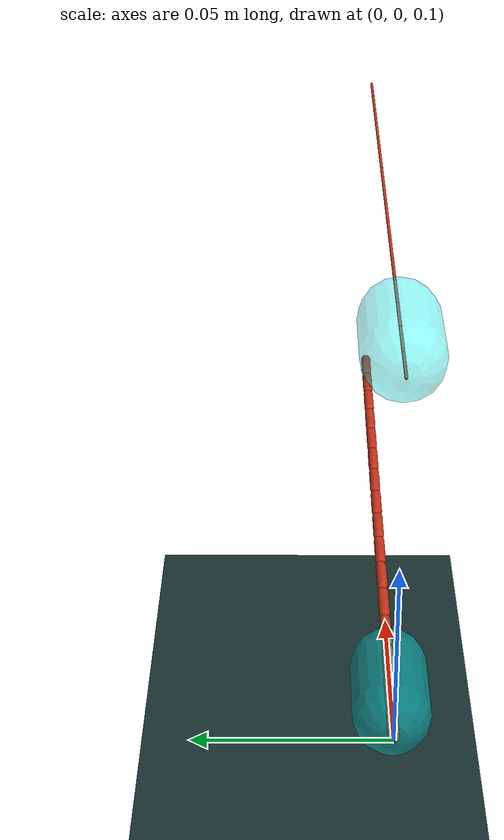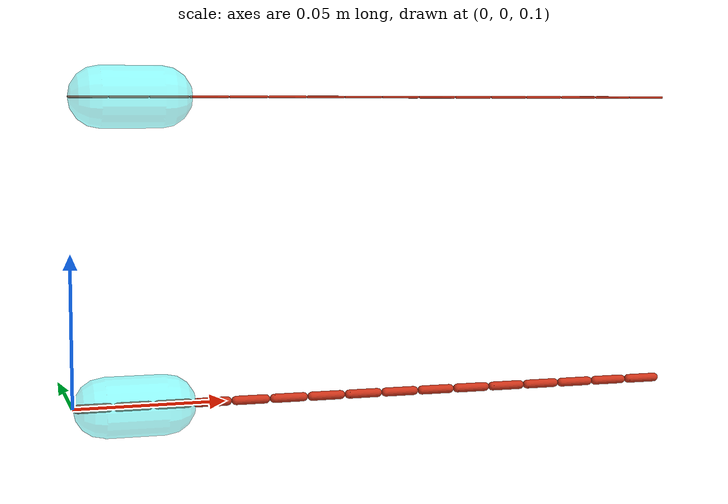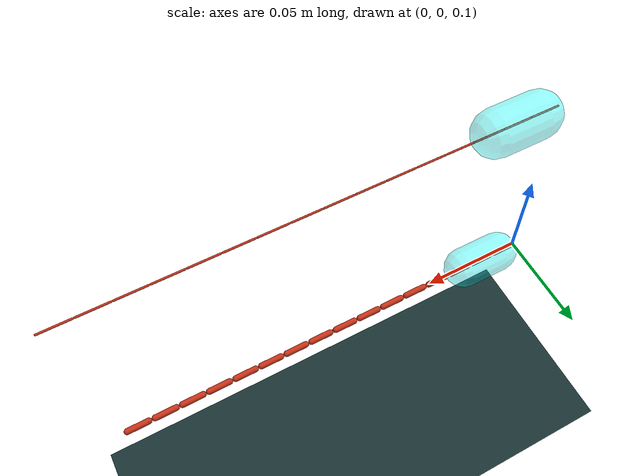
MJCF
<mujoco model="WhiskerSegmented">
<option timestep = "0.0002"></option>
  <include file="Backdrop.xml"/>

  <option gravity="0 0 0"/>

  <extension>
    <plugin plugin="mujoco.elasticity.cable"/>
  </extension>

  <statistic center="0 0 0.2" extent="1"/>

  <compiler autolimits="true"/>

  <visual>
    <global elevation="0"/>
  </visual>

  <default>
    <geom solref="0.01 1" solimp=".95 .99 .0001"/>
  </default>

  <worldbody>

<body name = "WhiskerBody_Nylon" pos = " 0.0065 -0.0 0.1" >

    <body name ="Seg0" pos = " 0 0 0">
   <geom name="Seg0_geom" type="capsule" size="0.0015 0.005" rgba="0.8 0.2 0.1 1" mass="1e-4" pos=" 0.0 0 0" euler="0 270 0" />
    <site name="segmented_whis_base_site_nylon" type="capsule" size="0.01 0.01" rgba="0 1 1 0.4" euler = "0 90 0" pos = "0.0135 0.0 0"/>
   <joint name="hinge0" type="hinge" axis="0 0 1" pos="-0.005 0 0" range="0 360" stiffness="0.888" damping="0.01" springref="0"/>

    <body name ="Seg1" pos = " 0 0 0">
    <joint name="hinge1" type="hinge" axis="0 0 1" pos="0.0065 0 0" range="-90 90" stiffness="0.888" damping="0.01" springref="0" />
    <geom name="Seg1_geom" type="capsule" size="0.0015 0.005" rgba="0.8 0.2 0.1 1" mass="1e-4" pos=" 0.013 0 0" euler="0 270 0" />

    <body name ="Seg2" pos = " 0 0 0">
    <joint name="hinge2" type="hinge" axis="0 0 1" pos="0.0195 0 0" range="-90 90 " stiffness="0.888" damping="0.01" springref="0"/>
    <geom name="Seg2_geom" type="capsule" size="0.0015 0.005" rgba="0.8 0.2 0.1 1" mass="1e-4" pos=" 0.026 0 0" euler="0 270 0" />

    <body name ="Seg3" pos = " 0 0 0">
    <joint name="hinge3" type="hinge" axis="0 0 1" pos="0.0325 0 0" range="-90 90" stiffness="0.888" damping="0.01" springref="0" />
    <geom name="Seg3_geom" type="capsule" size="0.0015 0.005" rgba="0.8 0.2 0.1 1" mass="1e-4" pos=" 0.039 0 0" euler="0 270 0" />

    <body name ="Seg4" pos = " 0 0 0">
    <joint name="hinge4" type="hinge" axis="0 0 1" pos="0.0455 0 0" range="-90 90" stiffness="0.888" damping="0.01" springref="0"/>
    <geom name="Seg4_geom" type="capsule" size="0.0015 0.005" rgba="0.8 0.2 0.1 1" mass="1e-4" pos=" 0.052 0 0" euler="0 270 0" />

    <body name ="Seg5" pos = " 0 0 0">
    <joint name="hinge5" type="hinge" axis="0 0 1" pos="0.0585 0 0" range="-90 90" stiffness="0.888" damping="0.01" springref="0" />
    <geom name="Seg5_geom" type="capsule" size="0.0015 0.005" rgba="0.8 0.2 0.1 1" mass="1e-4" pos=" 0.065 0 0" euler="0 270 0" />

    <body name ="Seg6" pos = " 0 0 0">
    <joint name="hinge6" type="hinge" axis="0 0 1" pos="0.0715 0 0" range="-90 90" stiffness="0.888" damping="0.01" springref="0"/>
    <geom name="Seg6_geom" type="capsule" size="0.0015 0.005" rgba="0.8 0.2 0.1 1" mass="1e-4" pos=" 0.078 0 0" euler="0 270 0" />

    <body name ="Seg7" pos = " 0 0 0">
    <joint name="hinge7" type="hinge" axis="0 0 1" pos="0.0845 0 0" range="-90 90" stiffness="0.888" damping="0.01" springref="0"/>
    <geom name="Seg7_geom" type="capsule" size="0.0015 0.005" rgba="0.8 0.2 0.1 1" mass="1e-4" pos=" 0.091 0 0" euler="0 270 0" />

    <body name ="Seg8" pos = " 0 0 0">
    <joint name="hinge8" type="hinge" axis="0 0 1" pos="0.0975 0 0" range="-90 90" stiffness="0.888" damping="0.01"  springref="0"/>
    <geom name="Seg8_geom" type="capsule" size="0.0015 0.005" rgba="0.8 0.2 0.1 1" mass="1e-4" pos=" 0.104 0 0" euler="0 270 0" />

    <body name ="Seg9" pos = " 0 0 0">
    <joint name="hinge9" type="hinge" axis="0 0 1" pos="0.1105 0 0" range="-90 90" stiffness="0.888" damping="0.01" springref="0"/>
    <geom name="Seg9_geom" type="capsule" size="0.0015 0.005" rgba="0.8 0.2 0.1 1" mass="1e-4" pos=" 0.117 0 0" euler="0 270 0"/>

   <body name ="Seg10" pos = " 0 0 0">
    <joint name="hinge10" type="hinge" axis="0 0 1" pos="0.1235 0 0" range="-90 90" stiffness="0.888" damping="0.01" springref="0" />
    <geom name="Seg10_geom" type="capsule" size="0.0015 0.005" rgba="0.8 0.2 0.1 1" mass="1e-4" pos=" 0.13 0 0" euler="0 270 0" />

   <body name ="Seg11" pos = " 0 0 0">
    <joint name="hinge11" type="hinge" axis="0 0 1" pos="0.1365 0 0" range="-90 90" stiffness="0.888" damping="0.01" springref="0"/>
    <geom name="Seg11_geom" type="capsule" size="0.0015 0.005" rgba="0.8 0.2 0.1 1" mass="1e-4" pos=" 0.143 0 0" euler="0 270 0" />

   <body name ="Seg12" pos = " 0 0 0">
    <joint name="hinge12" type="hinge" axis="0 0 1" pos="0.1495 0 0" range="-90 90" stiffness="0.888" damping="0.01" springref="0"/>
    <geom name="Seg12_geom" type="capsule" size="0.0015 0.005" rgba="0.8 0.2 0.1 1" mass="1e-4" pos=" 0.156 0 0" euler="0 270 0" />

   <body name ="Seg13" pos = " 0 0 0">
    <joint name="hinge13" type="hinge" axis="0 0 1" pos="0.1625 0 0" range="-90 90" stiffness="0.888" damping="0.01" springref="0"/>
    <geom name="Seg13_geom" type="capsule" size="0.0015 0.005" rgba="0.8 0.2 0.1 1" mass="1e-4" pos=" 0.169 0 0" euler="0 270 0" />

    <body name ="Seg14" pos = " 0 0 0">
    <joint name="hinge14" type="hinge" axis="0 0 1" pos="0.1755 0 0" range="-90 90" stiffness="0.888" damping="0.01" springref="0"/>
    <geom name="Seg14_geom" type="capsule" size="0.0015 0.005" rgba="0.8 0.2 0.1 1" mass="1e-4" pos=" 0.182 0 0" euler="0 270 0" />

    <body name ="Seg15" pos = " 0 0 0">
    <joint name="hinge15" type="hinge" axis="0 0 1" pos="0.1885 0 0" range="-90 90" stiffness="0.888" damping="0.01" springref="0"/>
    <geom name="Seg15_geom" type="capsule" size="0.0015 0.005" rgba="0.8 0.2 0.1 1" mass="1e-4" pos=" 0.195 0 0" euler="0 270 0" />

    </body>
    </body>
    </body>
    </body>
    </body>
    </body>
    </body>

    </body>
    </body>
    </body>
    </body>
    </body>
    </body>
    </body>
    </body>
    </body>
    </body>

    <body name = "WhiskerBody_Al" pos = " 0.0065 -0.0 0.2" >

        <body name ="Seg0_Al" pos = " 0 0 0">
       <geom name="Seg0_geom_Al" type="capsule" size="0.0004 0.0061" rgba="0.8 0.2 0.1 1" mass="1.8e-5" pos=" 0.0 0 0" euler="0 270 0" />
        <site name="segmented_whis_base_site_Al" type="capsule" size="0.01 0.01" rgba="0 1 1 0.4" euler = "0 90 0" pos = "0.0135 0.0 0"/>
       <joint name="hinge0_Al" type="hinge" axis="0 0 1" pos="-0.005 0 0" range="0 360" stiffness="0.1015" damping="0.01" springref="0"/>

        <body name ="Seg1_Al" pos = " 0 0 0">
        <joint name="hinge1_Al" type="hinge" axis="0 0 1" pos="0.0065 0 0" range="-90 90" stiffness="0.1015" damping="0.01" springref="0" />
        <geom name="Seg1_geom_Al" type="capsule" size="0.0004 0.0061" rgba="0.8 0.2 0.1 1" mass="1.8e-5" pos=" 0.013 0 0" euler="0 270 0" />

        <body name ="Seg2_Al" pos = " 0 0 0">
        <joint name="hinge2_Al" type="hinge" axis="0 0 1" pos="0.0195 0 0" range="-90 90 " stiffness="0.1015" damping="0.01" springref="0"/>
        <geom name="Seg2_geom_Al" type="capsule" size="0.0004 0.0061" rgba="0.8 0.2 0.1 1" mass="1.8e-5" pos=" 0.026 0 0" euler="0 270 0" />

        <body name ="Seg3_Al" pos = " 0 0 0">
        <joint name="hinge3_Al" type="hinge" axis="0 0 1" pos="0.0325 0 0" range="-90 90" stiffness="0.1015" damping="0.01" springref="0" />
        <geom name="Seg3_geom_Al" type="capsule" size="0.0004 0.0061" rgba="0.8 0.2 0.1 1" mass="1.8e-5" pos=" 0.039 0 0" euler="0 270 0" />

        <body name ="Seg4_Al" pos = " 0 0 0">
        <joint name="hinge4_Al" type="hinge" axis="0 0 1" pos="0.0455 0 0" range="-90 90" stiffness="0.1015" damping="0.01" springref="0"/>
        <geom name="Seg4_geom_Al" type="capsule" size="0.0004 0.0061" rgba="0.8 0.2 0.1 1" mass="1.8e-5" pos=" 0.052 0 0" euler="0 270 0" />

        <body name ="Seg5_Al" pos = " 0 0 0">
        <joint name="hinge5_Al" type="hinge" axis="0 0 1" pos="0.0585 0 0" range="-90 90" stiffness="0.1015" damping="0.01" springref="0" />
        <geom name="Seg5_geom_Al" type="capsule" size="0.0004 0.0061" rgba="0.8 0.2 0.1 1" mass="1.8e-5" pos=" 0.065 0 0" euler="0 270 0" />

        <body name ="Seg6_Al" pos = " 0 0 0">
        <joint name="hinge6_Al" type="hinge" axis="0 0 1" pos="0.0715 0 0" range="-90 90" stiffness="0.1015" damping="0.01" springref="0"/>
        <geom name="Seg6_geom_Al" type="capsule" size="0.0004 0.0061" rgba="0.8 0.2 0.1 1" mass="1.8e-5" pos=" 0.078 0 0" euler="0 270 0" />

        <body name ="Seg7_Al" pos = " 0 0 0">
        <joint name="hinge7_Al" type="hinge" axis="0 0 1" pos="0.0845 0 0" range="-90 90" stiffness="0.1015" damping="0.01" springref="0"/>
        <geom name="Seg7_geom_Al" type="capsule" size="0.0004 0.0061" rgba="0.8 0.2 0.1 1" mass="1.8e-5" pos=" 0.091 0 0" euler="0 270 0" />

        <body name ="Seg8_Al" pos = " 0 0 0">
        <joint name="hinge8_Al" type="hinge" axis="0 0 1" pos="0.0975 0 0" range="-90 90" stiffness="0.1015" damping="0.01"  springref="0"/>
        <geom name="Seg8_geom_Al" type="capsule" size="0.0004 0.0061" rgba="0.8 0.2 0.1 1" mass="1.8e-5" pos=" 0.104 0 0" euler="0 270 0" />

        <body name ="Seg9_Al" pos = " 0 0 0">
        <joint name="hinge9_Al" type="hinge" axis="0 0 1" pos="0.1105 0 0" range="-90 90" stiffness="0.1015" damping="0.01" springref="0"/>
        <geom name="Seg9_geom_Al" type="capsule" size="0.0004 0.0061" rgba="0.8 0.2 0.1 1" mass="1.8e-5" pos=" 0.117 0 0" euler="0 270 0"/>

       <body name ="Seg10_Al" pos = " 0 0 0">
        <joint name="hinge10_Al" type="hinge" axis="0 0 1" pos="0.1235 0 0" range="-90 90" stiffness="0.1015" damping="0.01" springref="0" />
        <geom name="Seg10_geom_Al" type="capsule" size="0.0004 0.0061" rgba="0.8 0.2 0.1 1" mass="1.8e-5" pos=" 0.13 0 0" euler="0 270 0" />

       <body name ="Seg11_Al" pos = " 0 0 0">
        <joint name="hinge11_Al" type="hinge" axis="0 0 1" pos="0.1365 0 0" range="-90 90" stiffness="0.1015" damping="0.01" springref="0"/>
        <geom name="Seg11_geom_Al" type="capsule" size="0.0004 0.0061" rgba="0.8 0.2 0.1 1" mass="1.8e-5" pos=" 0.143 0 0" euler="0 270 0" />

       <body name ="Seg12_Al" pos = " 0 0 0">
        <joint name="hinge12_Al" type="hinge" axis="0 0 1" pos="0.1495 0 0" range="-90 90" stiffness="0.1015" damping="0.01" springref="0"/>
        <geom name="Seg12_geom_Al" type="capsule" size="0.0004 0.0061" rgba="0.8 0.2 0.1 1" mass="1.8e-5" pos=" 0.156 0 0" euler="0 270 0" />

       <body name ="Seg13_Al" pos = " 0 0 0">
        <joint name="hinge13_Al" type="hinge" axis="0 0 1" pos="0.1625 0 0" range="-90 90" stiffness="0.1015" damping="0.01" springref="0"/>
        <geom name="Seg13_geom_Al" type="capsule" size="0.0004 0.0061" rgba="0.8 0.2 0.1 1" mass="1.8e-5" pos=" 0.169 0 0" euler="0 270 0" />

        <body name ="Seg14_Al" pos = " 0 0 0">
        <joint name="hinge14_Al" type="hinge" axis="0 0 1" pos="0.1755 0 0" range="-90 90" stiffness="0.1015" damping="0.01" springref="0"/>
        <geom name="Seg14_geom_Al" type="capsule" size="0.0004 0.0061" rgba="0.8 0.2 0.1 1" mass="1.8e-5" pos=" 0.182 0 0" euler="0 270 0" />

        <body name ="Seg15_Al" pos = " 0 0 0">
        <joint name="hinge15_Al" type="hinge" axis="0 0 1" pos="0.1885 0 0" range="-90 90" stiffness="0.1015" damping="0.01" springref="0"/>
        <geom name="Seg15_geom_Al" type="capsule" size="0.0004 0.0061" rgba="0.8 0.2 0.1 1" mass="1.8e-5" pos=" 0.195 0 0" euler="0 270 0" />

        </body>
        </body>
        </body>
        </body>
        </body>
        </body>
        </body>

        </body>
        </body>
        </body>
        </body>
        </body>
        </body>
        </body>
        </body>
        </body>
        </body>

    </worldbody>

  <sensor>

        <force name = "manual_base_force_sensor_nylon" site="segmented_whis_base_site_nylon" />
        <torque name ="manual_base_torque_sensor_nylon" site="segmented_whis_base_site_nylon" />

        <force name = "manual_base_force_sensor_Al" site="segmented_whis_base_site_Al" />
        <torque name ="manual_base_torque_sensor_Al" site="segmented_whis_base_site_Al" />

    </sensor>

</mujoco>

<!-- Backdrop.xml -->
<mujoco>

  <compiler meshdir="asset" texturedir="asset"/>

  <statistic meansize=".05"/>

  <worldbody>
    <light diffuse=".4 .2 .4" specular="0.2 0.1 0.1" pos="0 0 2.0" dir="0 0 -1" castshadow="false"/>
    <light directional="true" diffuse=".8 .8 .8" specular="0.2 0.2 0.2" pos="0 0 4" dir="0 0 -1"/>
   <geom name="ground" size="0 0 1" type="plane" condim="1" pos="0 0 0" quat="1 0 0 0" rgba = "0.1 0.2 0.2 1"/>
  </worldbody>
</mujoco>
